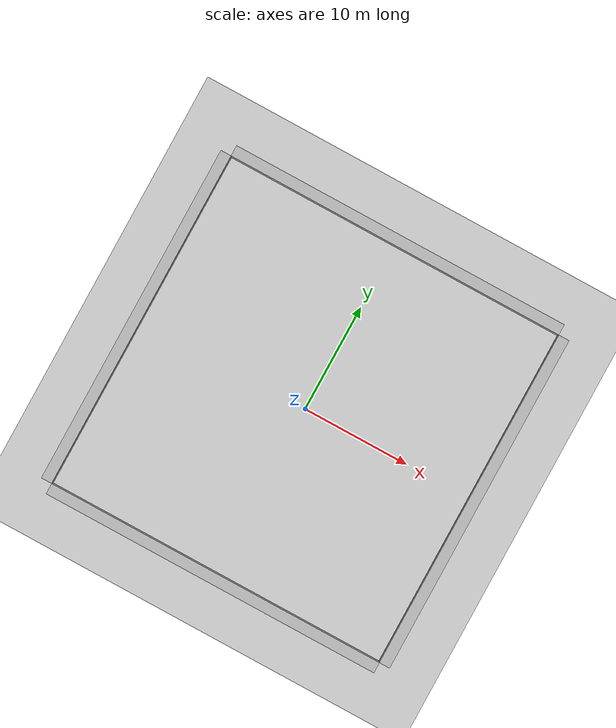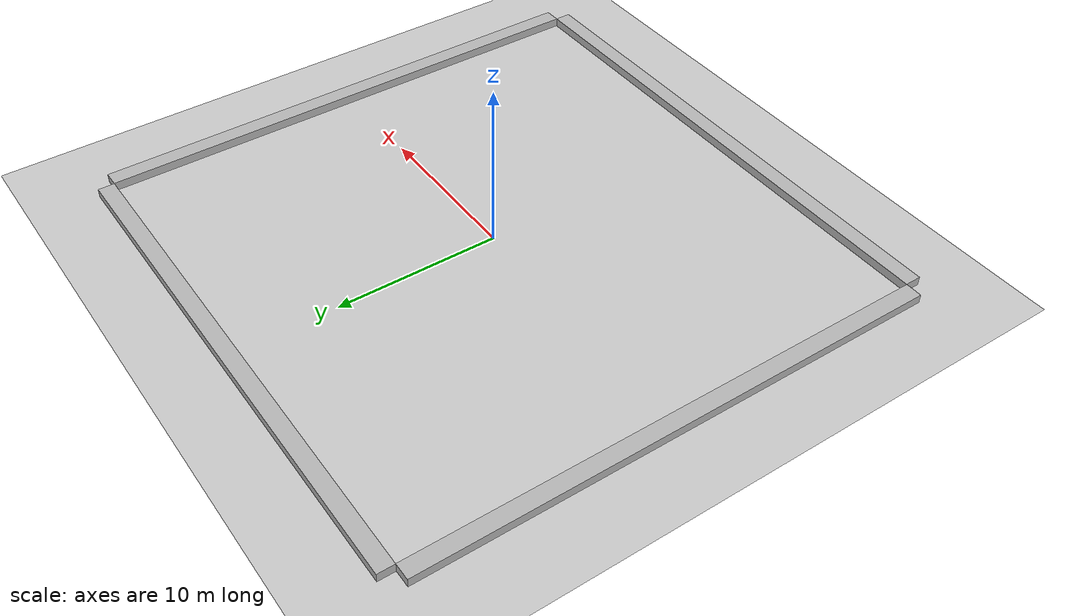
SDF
<sdf version='1.6'>
  <world name='default'>
    <light name='sun' type='directional'>
      <cast_shadows>1</cast_shadows>
      <pose frame=''>0 0 10 0 -0 0</pose>
      <diffuse>0.8 0.8 0.8 1</diffuse>
      <specular>0.1 0.1 0.1 1</specular>
      <attenuation>
        <range>1000</range>
        <constant>0.9</constant>
        <linear>0.01</linear>
        <quadratic>0.001</quadratic>
      </attenuation>
      <direction>-0.5 0.5 -1</direction>
    </light>
    <model name='ground_plane'>
      <static>1</static>
      <link name='link'>
        <collision name='collision'>
          <geometry>
            <plane>
              <normal>0 0 1</normal>
              <size>100 100</size>
            </plane>
          </geometry>
          <surface>
            <friction>
              <ode>
                <mu>100</mu>
                <mu2>50</mu2>
              </ode>
              <torsional>
                <ode/>
              </torsional>
            </friction>
            <contact>
              <ode/>
            </contact>
            <bounce/>
          </surface>
          <max_contacts>10</max_contacts>
        </collision>
        <visual name='visual'>
          <cast_shadows>0</cast_shadows>
          <geometry>
            <plane>
              <normal>0 0 1</normal>
              <size>100 100</size>
            </plane>
          </geometry>
          <material>
            <script>
              <uri>file://media/materials/scripts/gazebo.material</uri>
              <name>Gazebo/Grey</name>
            </script>
          </material>
        </visual>
        <self_collide>0</self_collide>
        <kinematic>0</kinematic>
        <gravity>1</gravity>
      </link>
    </model>
    <gravity>0 0 -9.8</gravity>
    <magnetic_field>6e-06 2.3e-05 -4.2e-05</magnetic_field>
    <atmosphere type='adiabatic'/>
    <physics name='default_physics' default='0' type='ode'>
      <max_step_size>0.001</max_step_size>
      <real_time_factor>1</real_time_factor>
      <real_time_update_rate>1000</real_time_update_rate>
    </physics>
    <scene>
      <ambient>0.4 0.4 0.4 1</ambient>
      <background>0.7 0.7 0.7 1</background>
      <shadows>1</shadows>
    </scene>
    <spherical_coordinates>
      <surface_model>EARTH_WGS84</surface_model>
      <latitude_deg>0</latitude_deg>
      <longitude_deg>0</longitude_deg>
      <elevation>0</elevation>
      <heading_deg>0</heading_deg>
    </spherical_coordinates>

    <model name='brick_box_32x1x1_s'>
      <static>1</static>
      <link name='chassis_s'>
        <pose frame=''>0 0 0 0 0 0</pose>
        <collision name='collision'>
          <geometry>
            <box>
              <size>32 1 1</size>
            </box>
          </geometry>
          <max_contacts>10</max_contacts>
          <surface>
            <contact>
              <ode/>
            </contact>
            <bounce/>
            <friction>
              <torsional>
                <ode/>
              </torsional>
              <ode/>
            </friction>
          </surface>
        </collision>
        <visual name='visual'>
          <geometry>
            <mesh>
              <uri>model://brick_box_3x1x3/meshes/simple_box.dae</uri>
              <scale>32 1 1</scale>
            </mesh>
          </geometry>
          <material>
            <script>
              <uri>model://brick_box_3x1x3/materials/scripts</uri>
              <uri>model://brick_box_3x1x3/materials/textures</uri>
              <name>BrickBox/Diffuse</name>
            </script>
          </material>
        </visual>
        <self_collide>0</self_collide>
        <kinematic>0</kinematic>
        <gravity>1</gravity>
      </link>
      <pose frame=''>0 -16.5 0 0 0 0</pose>
    </model>

    <model name='brick_box_32x1x1_e'>
      <static>1</static>
      <link name='chassis_e'>
        <pose frame=''>0 0 0 0 0 0</pose>
        <collision name='collision'>
          <geometry>
            <box>
              <size>32 1 1</size>
            </box>
          </geometry>
          <max_contacts>10</max_contacts>
          <surface>
            <contact>
              <ode/>
            </contact>
            <bounce/>
            <friction>
              <torsional>
                <ode/>
              </torsional>
              <ode/>
            </friction>
          </surface>
        </collision>
        <visual name='visual'>
          <geometry>
            <mesh>
              <uri>model://brick_box_3x1x3/meshes/simple_box.dae</uri>
              <scale>32 1 1</scale>
            </mesh>
          </geometry>
          <material>
            <script>
              <uri>model://brick_box_3x1x3/materials/scripts</uri>
              <uri>model://brick_box_3x1x3/materials/textures</uri>
              <name>BrickBox/Diffuse</name>
            </script>
          </material>
        </visual>
        <self_collide>0</self_collide>
        <kinematic>0</kinematic>
        <gravity>1</gravity>
      </link>
      <pose frame=''>16.5 0 0 0 0 1.57</pose>
    </model>

    <model name='brick_box_32x1x1_n'>
      <static>1</static>
      <link name='chassis_n'>
        <pose frame=''>0 0 0 0 0 0</pose>
        <collision name='collision'>
          <geometry>
            <box>
              <size>32 1 1</size>
            </box>
          </geometry>
          <max_contacts>10</max_contacts>
          <surface>
            <contact>
              <ode/>
            </contact>
            <bounce/>
            <friction>
              <torsional>
                <ode/>
              </torsional>
              <ode/>
            </friction>
          </surface>
        </collision>
        <visual name='visual'>
          <geometry>
            <mesh>
              <uri>model://brick_box_3x1x3/meshes/simple_box.dae</uri>
              <scale>32 1 1</scale>
            </mesh>
          </geometry>
          <material>
            <script>
              <uri>model://brick_box_3x1x3/materials/scripts</uri>
              <uri>model://brick_box_3x1x3/materials/textures</uri>
              <name>BrickBox/Diffuse</name>
            </script>
          </material>
        </visual>
        <self_collide>0</self_collide>
        <kinematic>0</kinematic>
        <gravity>1</gravity>
      </link>
      <pose frame=''>0 16.5 0 0 -0 0</pose>
    </model>

    <model name='brick_box_32x1x1_w'>
      <static>1</static>
      <link name='chassis_w'>
        <pose frame=''>0 0 0 0 0 0</pose>
        <collision name='collision'>
          <geometry>
            <box>
              <size>32 1 1</size>
            </box>
          </geometry>
          <max_contacts>10</max_contacts>
          <surface>
            <contact>
              <ode/>
            </contact>
            <bounce/>
            <friction>
              <torsional>
                <ode/>
              </torsional>
              <ode/>
            </friction>
          </surface>
        </collision>
        <visual name='visual'>
          <geometry>
            <mesh>
              <uri>model://brick_box_3x1x3/meshes/simple_box.dae</uri>
              <scale>32 1 1</scale>
            </mesh>
          </geometry>
          <material>
            <script>
              <uri>model://brick_box_3x1x3/materials/scripts</uri>
              <uri>model://brick_box_3x1x3/materials/textures</uri>
              <name>BrickBox/Diffuse</name>
            </script>
          </material>
        </visual>
        <self_collide>0</self_collide>
        <kinematic>0</kinematic>
        <gravity>1</gravity>
      </link>
      <pose frame=''>-16.5 0 0 0 0 1.57</pose>
    </model>

    <gui fullscreen='0'>
      <camera name='user_camera'>
        <pose frame=''>-9.83128 -9.78773 19.6343 0 0.855644 0.945849</pose>
        <view_controller>orbit</view_controller>
        <projection_type>perspective</projection_type>
      </camera>
    </gui>
  </world>
</sdf>
